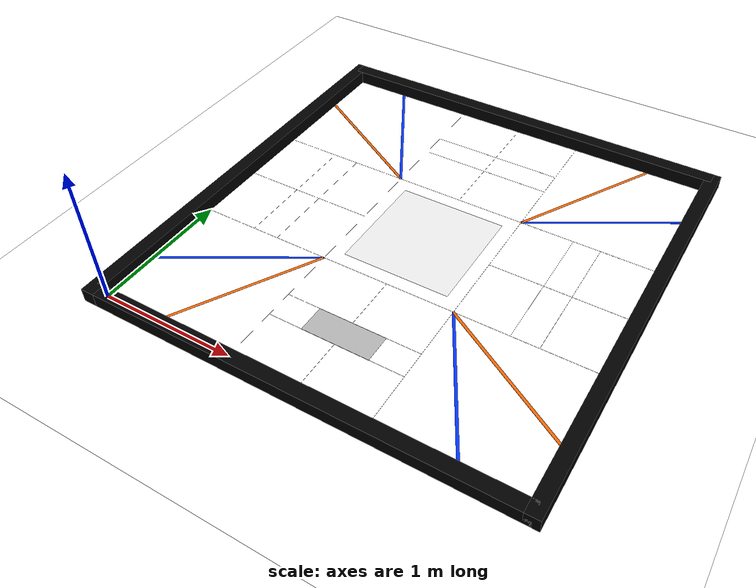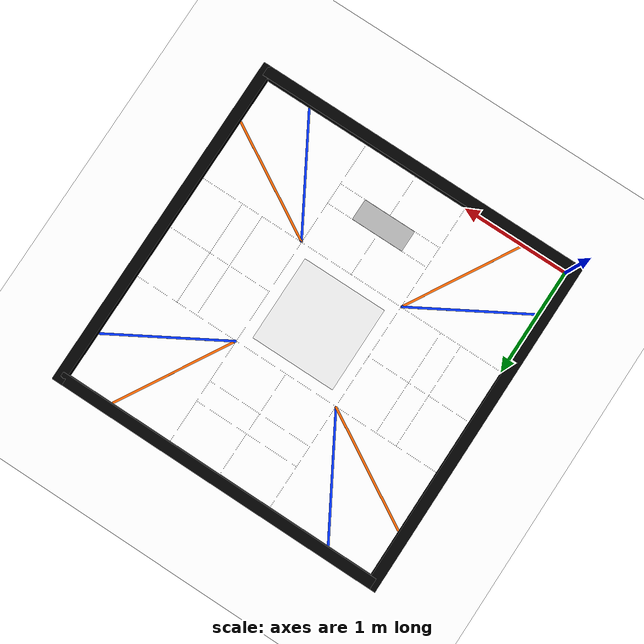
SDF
<?xml version="1.0" ?>
<sdf version="1.7">
  <world name="wro_track_2026">

    <!-- Physics settings -->
    <physics name="default_physics" default="true" type="ode">
      <max_step_size>0.001</max_step_size>
      <real_time_factor>1.0</real_time_factor>
      <real_time_update_rate>1000</real_time_update_rate>
    </physics>

    <!-- Lighting (will be randomized by generator) -->
    <light name="sun" type="directional">
      <pose>0 0 10 0 0 0</pose>
      <diffuse>0.8 0.8 0.8 1</diffuse>
      <specular>0.2 0.2 0.2 1</specular>
      <direction>-0.5 -0.5 -1.0</direction>
      <cast_shadows>true</cast_shadows>
    </light>

    <!-- Additional ambient light -->
    <light name="ambient_light" type="point">
      <pose>0 0 3 0 0 0</pose>
      <diffuse>0.5 0.5 0.5 1</diffuse>
      <specular>0.1 0.1 0.1 1</specular>
      <attenuation>
        <range>20</range>
        <constant>0.5</constant>
        <linear>0.01</linear>
        <quadratic>0.001</quadratic>
      </attenuation>
    </light>

    <!-- Ground plane: 3200mm x 3200mm WHITE mat (WRO Spec 13.1-13.2) -->
    <model name="ground">
      <static>true</static>
      <pose>1.5 1.5 0 0 0 0</pose>
      <link name="link">
        <visual name="visual">
          <geometry>
            <plane>
              <normal>0 0 1</normal>
              <size>3.2 3.2</size>
            </plane>
          </geometry>
          <material>
            <ambient>1.0 1.0 1.0 1</ambient>  <!-- WHITE -->
            <diffuse>1.0 1.0 1.0 1</diffuse>
            <specular>0.1 0.1 0.1 1</specular>
          </material>
        </visual>
        <collision name="collision">
          <geometry>
            <plane>
              <normal>0 0 1</normal>
              <size>3.2 3.2</size>
            </plane>
          </geometry>
          <surface>
            <friction>
              <ode>
                <mu>0.8</mu>
                <mu2>0.8</mu2>
              </ode>
            </friction>
          </surface>
        </collision>
      </link>
    </model>

    <!-- EXTERIOR WALLS: 3000mm x 3000mm inner track, 100mm height, BLACK (WRO Spec 13.3-13.4) -->

    <!-- North wall (thickness extends outward, overlaps at corners) -->
    <model name="exterior_wall_north">
      <static>true</static>
      <pose>1.5 3.05 0.05 0 0 0</pose>
      <link name="link">
        <visual name="visual">
          <geometry>
            <box><size>3.1 0.1 0.1</size></box>
          </geometry>
          <material>
            <ambient>0.0 0.0 0.0 1</ambient>  <!-- BLACK -->
            <diffuse>0.0 0.0 0.0 1</diffuse>
            <specular>0.0 0.0 0.0 1</specular>
          </material>
        </visual>
        <collision name="collision">
          <geometry>
            <box><size>3.1 0.1 0.1</size></box>
          </geometry>
        </collision>
      </link>
    </model>

    <!-- South wall (thickness extends outward, overlaps at corners) -->
    <model name="exterior_wall_south">
      <static>true</static>
      <pose>1.5 -0.05 0.05 0 0 0</pose>
      <link name="link">
        <visual name="visual">
          <geometry>
            <box><size>3.1 0.1 0.1</size></box>
          </geometry>
          <material>
            <ambient>0.0 0.0 0.0 1</ambient>
            <diffuse>0.0 0.0 0.0 1</diffuse>
            <specular>0.0 0.0 0.0 1</specular>
          </material>
        </visual>
        <collision name="collision">
          <geometry>
            <box><size>3.1 0.1 0.1</size></box>
          </geometry>
        </collision>
      </link>
    </model>

    <!-- East wall (thickness extends outward, overlaps at corners) -->
    <model name="exterior_wall_east">
      <static>true</static>
      <pose>3.05 1.5 0.05 0 0 0</pose>
      <link name="link">
        <visual name="visual">
          <geometry>
            <box><size>0.1 3.2 0.1</size></box>
          </geometry>
          <material>
            <ambient>0.0 0.0 0.0 1</ambient>
            <diffuse>0.0 0.0 0.0 1</diffuse>
            <specular>0.0 0.0 0.0 1</specular>
          </material>
        </visual>
        <collision name="collision">
          <geometry>
            <box><size>0.1 3.2 0.1</size></box>
          </geometry>
        </collision>
      </link>
    </model>

    <!-- West wall (thickness extends outward, overlaps at corners) -->
    <model name="exterior_wall_west">
      <static>true</static>
      <pose>-0.05 1.5 0.05 0 0 0</pose>
      <link name="link">
        <visual name="visual">
          <geometry>
            <box><size>0.1 3.2 0.1</size></box>
          </geometry>
          <material>
            <ambient>0.0 0.0 0.0 1</ambient>
            <diffuse>0.0 0.0 0.0 1</diffuse>
            <specular>0.0 0.0 0.0 1</specular>
          </material>
        </visual>
        <collision name="collision">
          <geometry>
            <box><size>0.1 3.2 0.1</size></box>
          </geometry>
        </collision>
      </link>
    </model>

    <!-- CORNER LINES: Orange and Blue lines at 30° angles (WRO Spec 13.9) -->
    <!-- 20mm thick lines radiating from inner corners -->

    <!-- Northeast corner - Blue line (extends to east wall, 420mm from corner) -->
    <model name="corner_ne_blue">
      <static>true</static>
      <pose>2.5 2.29 0.0001 0 0 0.524</pose>  <!-- 30° angle, center of line -->
      <link name="link">
        <visual name="visual">
          <geometry>
            <box><size>1.156 0.02 0.001</size></box>  <!-- From (2.0,2.0) to (3.0,2.58) -->
          </geometry>
          <material>
            <ambient>0.0 0.2 1.0 1</ambient>  <!-- Blue CMYK(100,80,0,0) -->
            <diffuse>0.0 0.2 1.0 1</diffuse>
          </material>
        </visual>
      </link>
    </model>

    <!-- Northeast corner - Orange line (extends to north wall, 420mm from corner) -->
    <model name="corner_ne_orange">
      <static>true</static>
      <pose>2.29 2.5 0.0001 0 0 1.047</pose>  <!-- 60° angle, center of line -->
      <link name="link">
        <visual name="visual">
          <geometry>
            <box><size>1.156 0.02 0.001</size></box>  <!-- From (2.0,2.0) to (2.58,3.0) -->
          </geometry>
          <material>
            <ambient>1.0 0.4 0.0 1</ambient>  <!-- Orange CMYK(0,60,100,0) -->
            <diffuse>1.0 0.4 0.0 1</diffuse>
          </material>
        </visual>
      </link>
    </model>

    <!-- Southeast corner - Orange line (extends to east wall, 420mm from corner) -->
    <model name="corner_se_orange">
      <static>true</static>
      <pose>2.5 0.71 0.0001 0 0 -0.524</pose>  <!-- -30° angle, center of line -->
      <link name="link">
        <visual name="visual">
          <geometry>
            <box><size>1.156 0.02 0.001</size></box>  <!-- From (2.0,1.0) to (3.0,0.42) -->
          </geometry>
          <material>
            <ambient>1.0 0.4 0.0 1</ambient>  <!-- Orange CMYK(0,60,100,0) -->
            <diffuse>1.0 0.4 0.0 1</diffuse>
          </material>
        </visual>
      </link>
    </model>

    <!-- Southeast corner - Blue line (extends to south wall, 420mm from corner) -->
    <model name="corner_se_blue">
      <static>true</static>
      <pose>2.29 0.5 0.0001 0 0 -1.047</pose>  <!-- -60° angle, center of line -->
      <link name="link">
        <visual name="visual">
          <geometry>
            <box><size>1.156 0.02 0.001</size></box>  <!-- From (2.0,1.0) to (2.58,0.0) -->
          </geometry>
          <material>
            <ambient>0.0 0.2 1.0 1</ambient>  <!-- Blue CMYK(100,80,0,0) -->
            <diffuse>0.0 0.2 1.0 1</diffuse>
          </material>
        </visual>
      </link>
    </model>

    <!-- Southwest corner - Blue line (extends to west wall, 420mm from corner) -->
    <model name="corner_sw_blue">
      <static>true</static>
      <pose>0.5 0.71 0.0001 0 0 -2.618</pose>  <!-- -150° angle, center of line -->
      <link name="link">
        <visual name="visual">
          <geometry>
            <box><size>1.156 0.02 0.001</size></box>  <!-- From (1.0,1.0) to (0.0,0.42) -->
          </geometry>
          <material>
            <ambient>0.0 0.2 1.0 1</ambient>  <!-- Blue CMYK(100,80,0,0) -->
            <diffuse>0.0 0.2 1.0 1</diffuse>
          </material>
        </visual>
      </link>
    </model>

    <!-- Southwest corner - Orange line (extends to south wall, 420mm from corner) -->
    <model name="corner_sw_orange">
      <static>true</static>
      <pose>0.71 0.5 0.0001 0 0 -2.094</pose>  <!-- -120° angle, center of line -->
      <link name="link">
        <visual name="visual">
          <geometry>
            <box><size>1.156 0.02 0.001</size></box>  <!-- From (1.0,1.0) to (0.42,0.0) -->
          </geometry>
          <material>
            <ambient>1.0 0.4 0.0 1</ambient>  <!-- Orange CMYK(0,60,100,0) -->
            <diffuse>1.0 0.4 0.0 1</diffuse>
          </material>
        </visual>
      </link>
    </model>

    <!-- Northwest corner - Orange line (extends to west wall, 420mm from corner) -->
    <model name="corner_nw_orange">
      <static>true</static>
      <pose>0.5 2.29 0.0001 0 0 2.618</pose>  <!-- 150° angle, center of line -->
      <link name="link">
        <visual name="visual">
          <geometry>
            <box><size>1.156 0.02 0.001</size></box>  <!-- From (1.0,2.0) to (0.0,2.58) -->
          </geometry>
          <material>
            <ambient>1.0 0.4 0.0 1</ambient>  <!-- Orange CMYK(0,60,100,0) -->
            <diffuse>1.0 0.4 0.0 1</diffuse>
          </material>
        </visual>
      </link>
    </model>

    <!-- Northwest corner - Blue line (extends to north wall, 420mm from corner) -->
    <model name="corner_nw_blue">
      <static>true</static>
      <pose>0.71 2.5 0.0001 0 0 2.094</pose>  <!-- 120° angle, center of line -->
      <link name="link">
        <visual name="visual">
          <geometry>
            <box><size>1.156 0.02 0.001</size></box>  <!-- From (1.0,2.0) to (0.42,3.0) -->
          </geometry>
          <material>
            <ambient>0.0 0.2 1.0 1</ambient>  <!-- Blue CMYK(100,80,0,0) -->
            <diffuse>0.0 0.2 1.0 1</diffuse>
          </material>
        </visual>
      </link>
    </model>

    <!-- STARTING ZONES: 200×500mm zones with grey dashed marking (WRO Spec 13.10-13.11) -->
    <!-- Example starting zone in south section -->
    <model name="starting_zone_south">
      <static>true</static>
      <pose>1.5 0.5 0.0002 0 0 0</pose>
      <link name="link">
        <visual name="visual">
          <geometry>
            <box><size>0.5 0.2 0.001</size></box>
          </geometry>
          <material>
            <ambient>0.7 0.7 0.7 1</ambient>  <!-- Grey CMYK(0,0,0,30) -->
            <diffuse>0.7 0.7 0.7 1</diffuse>
          </material>
        </visual>
      </link>
    </model>

    <!-- Central logo area (800×800mm) - Optional visual reference -->
    <model name="central_logo">
      <static>true</static>
      <pose>1.5 1.5 0.0001 0 0 0</pose>
      <link name="link">
        <visual name="visual">
          <geometry>
            <box><size>0.8 0.8 0.001</size></box>
          </geometry>
          <material>
            <ambient>0.9 0.9 0.9 0.5</ambient>  <!-- Light grey, semi-transparent -->
            <diffuse>0.9 0.9 0.9 0.5</diffuse>
          </material>
        </visual>
      </link>
    </model>

    <!-- CORRIDOR DIVISION GRID LINES (Grey dashed lines at 1000mm intervals) -->
    <!-- Vertical line at X=1.0 -->
    <model name="grid_line_v1">
      <static>true</static>
      <pose>1.0 1.5 0.0001 0 0 0</pose>
      <link name="link">
        <visual name="visual">
          <geometry>
            <box><size>0.001 3.0 0.001</size></box>
          </geometry>
          <material>
            <ambient>0.6 0.6 0.6 0.5</ambient>  <!-- Grey dashed line -->
            <diffuse>0.6 0.6 0.6 0.5</diffuse>
          </material>
        </visual>
      </link>
    </model>

    <!-- Vertical line at X=2.0 -->
    <model name="grid_line_v2">
      <static>true</static>
      <pose>2.0 1.5 0.0001 0 0 0</pose>
      <link name="link">
        <visual name="visual">
          <geometry>
            <box><size>0.001 3.0 0.001</size></box>
          </geometry>
          <material>
            <ambient>0.6 0.6 0.6 0.5</ambient>
            <diffuse>0.6 0.6 0.6 0.5</diffuse>
          </material>
        </visual>
      </link>
    </model>

    <!-- Horizontal line at Y=1.0 -->
    <model name="grid_line_h1">
      <static>true</static>
      <pose>1.5 1.0 0.0001 0 0 0</pose>
      <link name="link">
        <visual name="visual">
          <geometry>
            <box><size>3.0 0.001 0.001</size></box>
          </geometry>
          <material>
            <ambient>0.6 0.6 0.6 0.5</ambient>
            <diffuse>0.6 0.6 0.6 0.5</diffuse>
          </material>
        </visual>
      </link>
    </model>

    <!-- Horizontal line at Y=2.0 -->
    <model name="grid_line_h2">
      <static>true</static>
      <pose>1.5 2.0 0.0001 0 0 0</pose>
      <link name="link">
        <visual name="visual">
          <geometry>
            <box><size>3.0 0.001 0.001</size></box>
          </geometry>
          <material>
            <ambient>0.6 0.6 0.6 0.5</ambient>
            <diffuse>0.6 0.6 0.6 0.5</diffuse>
          </material>
        </visual>
      </link>
    </model>

    <!-- CORRIDOR SUBDIVISION LINES (400mm-200mm-400mm divisions) -->

    <!-- NORTH CORRIDOR (Y=2.0 to Y=3.0) subdivisions -->
    <!-- Centerline dividing corridor length in half -->
    <model name="corridor_north_center">
      <static>true</static>
      <pose>1.5 2.5 0.0001 0 0 0</pose>
      <link name="link">
        <visual name="visual">
          <geometry>
            <box><size>0.001 1.0 0.001</size></box>
          </geometry>
          <material>
            <ambient>0.5 0.5 0.5 0.4</ambient>
            <diffuse>0.5 0.5 0.5 0.4</diffuse>
          </material>
        </visual>
      </link>
    </model>

    <!-- Width division line at Y=2.4 (400mm from inner edge) - only in corridor, not corners -->
    <model name="corridor_north_width1">
      <static>true</static>
      <pose>1.5 2.4 0.0001 0 0 0</pose>
      <link name="link">
        <visual name="visual">
          <geometry>
            <box><size>1.0 0.001 0.001</size></box>  <!-- Only X=1.0 to 2.0, avoiding corners -->
          </geometry>
          <material>
            <ambient>0.5 0.5 0.5 0.4</ambient>
            <diffuse>0.5 0.5 0.5 0.4</diffuse>
          </material>
        </visual>
      </link>
    </model>

    <!-- Width division line at Y=2.6 (600mm from inner edge) - only in corridor, not corners -->
    <model name="corridor_north_width2">
      <static>true</static>
      <pose>1.5 2.6 0.0001 0 0 0</pose>
      <link name="link">
        <visual name="visual">
          <geometry>
            <box><size>1.0 0.001 0.001</size></box>  <!-- Only X=1.0 to 2.0, avoiding corners -->
          </geometry>
          <material>
            <ambient>0.5 0.5 0.5 0.4</ambient>
            <diffuse>0.5 0.5 0.5 0.4</diffuse>
          </material>
        </visual>
      </link>
    </model>

    <!-- SOUTH CORRIDOR (Y=0.0 to Y=1.0) subdivisions -->
    <!-- Centerline dividing corridor length in half -->
    <model name="corridor_south_center">
      <static>true</static>
      <pose>1.5 0.5 0.0001 0 0 0</pose>
      <link name="link">
        <visual name="visual">
          <geometry>
            <box><size>0.001 1.0 0.001</size></box>
          </geometry>
          <material>
            <ambient>0.5 0.5 0.5 0.4</ambient>
            <diffuse>0.5 0.5 0.5 0.4</diffuse>
          </material>
        </visual>
      </link>
    </model>

    <!-- Width division line at Y=0.4 (400mm from inner edge) - only in corridor, not corners -->
    <model name="corridor_south_width1">
      <static>true</static>
      <pose>1.5 0.4 0.0001 0 0 0</pose>
      <link name="link">
        <visual name="visual">
          <geometry>
            <box><size>1.0 0.001 0.001</size></box>  <!-- Only X=1.0 to 2.0, avoiding corners -->
          </geometry>
          <material>
            <ambient>0.5 0.5 0.5 0.4</ambient>
            <diffuse>0.5 0.5 0.5 0.4</diffuse>
          </material>
        </visual>
      </link>
    </model>

    <!-- Width division line at Y=0.6 (600mm from inner edge) - only in corridor, not corners -->
    <model name="corridor_south_width2">
      <static>true</static>
      <pose>1.5 0.6 0.0001 0 0 0</pose>
      <link name="link">
        <visual name="visual">
          <geometry>
            <box><size>1.0 0.001 0.001</size></box>  <!-- Only X=1.0 to 2.0, avoiding corners -->
          </geometry>
          <material>
            <ambient>0.5 0.5 0.5 0.4</ambient>
            <diffuse>0.5 0.5 0.5 0.4</diffuse>
          </material>
        </visual>
      </link>
    </model>

    <!-- EAST CORRIDOR (X=2.0 to X=3.0) subdivisions -->
    <!-- Centerline dividing corridor length in half -->
    <model name="corridor_east_center">
      <static>true</static>
      <pose>2.5 1.5 0.0001 0 0 0</pose>
      <link name="link">
        <visual name="visual">
          <geometry>
            <box><size>1.0 0.001 0.001</size></box>
          </geometry>
          <material>
            <ambient>0.5 0.5 0.5 0.4</ambient>
            <diffuse>0.5 0.5 0.5 0.4</diffuse>
          </material>
        </visual>
      </link>
    </model>

    <!-- Width division line at X=2.4 (400mm from inner edge) - only in corridor, not corners -->
    <model name="corridor_east_width1">
      <static>true</static>
      <pose>2.4 1.5 0.0001 0 0 0</pose>
      <link name="link">
        <visual name="visual">
          <geometry>
            <box><size>0.001 1.0 0.001</size></box>  <!-- Only Y=1.0 to 2.0, avoiding corners -->
          </geometry>
          <material>
            <ambient>0.5 0.5 0.5 0.4</ambient>
            <diffuse>0.5 0.5 0.5 0.4</diffuse>
          </material>
        </visual>
      </link>
    </model>

    <!-- Width division line at X=2.6 (600mm from inner edge) - only in corridor, not corners -->
    <model name="corridor_east_width2">
      <static>true</static>
      <pose>2.6 1.5 0.0001 0 0 0</pose>
      <link name="link">
        <visual name="visual">
          <geometry>
            <box><size>0.001 1.0 0.001</size></box>  <!-- Only Y=1.0 to 2.0, avoiding corners -->
          </geometry>
          <material>
            <ambient>0.5 0.5 0.5 0.4</ambient>
            <diffuse>0.5 0.5 0.5 0.4</diffuse>
          </material>
        </visual>
      </link>
    </model>

    <!-- WEST CORRIDOR (X=0.0 to X=1.0) subdivisions -->
    <!-- Centerline dividing corridor length in half -->
    <model name="corridor_west_center">
      <static>true</static>
      <pose>0.5 1.5 0.0001 0 0 0</pose>
      <link name="link">
        <visual name="visual">
          <geometry>
            <box><size>1.0 0.001 0.001</size></box>
          </geometry>
          <material>
            <ambient>0.5 0.5 0.5 0.4</ambient>
            <diffuse>0.5 0.5 0.5 0.4</diffuse>
          </material>
        </visual>
      </link>
    </model>

    <!-- Width division line at X=0.4 (400mm from inner edge) - only in corridor, not corners -->
    <model name="corridor_west_width1">
      <static>true</static>
      <pose>0.4 1.5 0.0001 0 0 0</pose>
      <link name="link">
        <visual name="visual">
          <geometry>
            <box><size>0.001 1.0 0.001</size></box>  <!-- Only Y=1.0 to 2.0, avoiding corners -->
          </geometry>
          <material>
            <ambient>0.5 0.5 0.5 0.4</ambient>
            <diffuse>0.5 0.5 0.5 0.4</diffuse>
          </material>
        </visual>
      </link>
    </model>

    <!-- Width division line at X=0.6 (600mm from inner edge) - only in corridor, not corners -->
    <model name="corridor_west_width2">
      <static>true</static>
      <pose>0.6 1.5 0.0001 0 0 0</pose>
      <link name="link">
        <visual name="visual">
          <geometry>
            <box><size>0.001 1.0 0.001</size></box>  <!-- Only Y=1.0 to 2.0, avoiding corners -->
          </geometry>
          <material>
            <ambient>0.5 0.5 0.5 0.4</ambient>
            <diffuse>0.5 0.5 0.5 0.4</diffuse>
          </material>
        </visual>
      </link>
    </model>

  </world>
</sdf>
